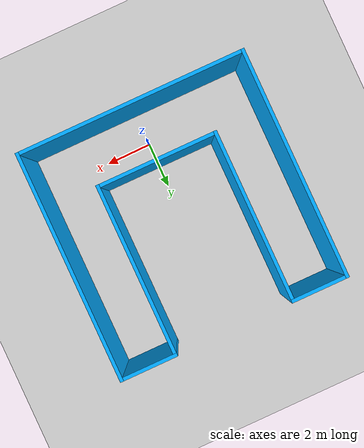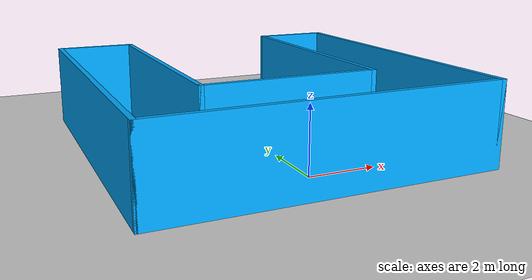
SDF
<sdf version="1.6">
 <world name="default">
  <light name="sun" type="directional">
   <pose>0 0 10 0 -0 0</pose>
   <diffuse>0.8 0.8 0.8 1</diffuse>
   <specular>0.2 0.2 0.2 1</specular>
   <attenuation>
    <range>1000</range>
    <constant>0.9</constant>
    <linear>0.01</linear>
    <quadratic>0.001</quadratic>
   </attenuation>
   <direction>-0.5 0.1 -0.9</direction>
  </light>
  <model name="ground_plane">
   <static>1</static>
   <link name="link">
    <collision name="collision">
     <geometry><plane><normal>0 0 1</normal><size>100 100</size></plane></geometry>
     <surface>
      <contact><collide_bitmask>65535</collide_bitmask></contact>
      <friction><ode><mu>100</mu><mu2>50</mu2></ode></friction>
     </surface>
    </collision>
    <visual name="visual">
     <cast_shadows>0</cast_shadows>
     <geometry><plane><normal>0 0 1</normal><size>100 100</size></plane></geometry>
     <material>
      <script><uri>file://media/materials/scripts/gazebo.material</uri><name>Gazebo/Grey</name></script>
     </material>
    </visual>
   </link>
  </model>
  <gravity>0 0 -9.8</gravity>
  <magnetic_field>6e-06 2.3e-05 -4.2e-05</magnetic_field>
  <atmosphere type="adiabatic"/>
  <physics name="default_physics" default="0" type="ode">
   <max_step_size>0.001</max_step_size>
   <real_time_factor>1</real_time_factor>
   <real_time_update_rate>1000</real_time_update_rate>
  </physics>
  <scene><ambient>0.4 0.4 0.4 1</ambient><background>0.7 0.7 0.7 1</background><shadows>1</shadows></scene>
  <spherical_coordinates>
   <surface_model>EARTH_WGS84</surface_model>
   <latitude_deg>0</latitude_deg>
   <longitude_deg>0</longitude_deg>
   <elevation>0</elevation>
   <heading_deg>0</heading_deg>
  </spherical_coordinates>
  <model name="MyWorld">
   <pose>-0.016089 3.44923 0 0 -0 0</pose>
   <link name="Wall_11">
    <collision name="Wall_11_Collision">
     <geometry><box><size>10 0.15 2.5</size></box></geometry>
     <pose>0 0 1.25 0 -0 0</pose>
    </collision>
    <visual name="Wall_11_Visual">
     <pose>0 0 1.25 0 -0 0</pose>
     <geometry><box><size>10 0.15 2.5</size></box></geometry>
     <material>
      <script><uri>file://media/materials/scripts/gazebo.material</uri><name>Gazebo/Grey</name></script>
      <ambient>0 0.666667 1 1</ambient>
     </material>
     <meta><layer>0</layer></meta>
    </visual>
    <pose>-4.925 0 0 0 -0 1.5708</pose>
   </link>
   <link name="Wall_24">
    <collision name="Wall_24_Collision">
     <geometry><box><size>10 0.15 2.5</size></box></geometry>
     <pose>0 0 1.25 0 -0 0</pose>
    </collision>
    <visual name="Wall_24_Visual">
     <pose>0 0 1.25 0 -0 0</pose>
     <geometry><box><size>10 0.15 2.5</size></box></geometry>
     <material>
      <script><uri>file://media/materials/scripts/gazebo.material</uri><name>Gazebo/Grey</name></script>
      <ambient>0 0.666667 1 1</ambient>
     </material>
     <meta><layer>0</layer></meta>
    </visual>
    <pose>4.925 0 0 0 -0 1.5708</pose>
   </link>
   <link name="Wall_26">
    <collision name="Wall_26_Collision">
     <geometry><box><size>2.5 0.15 2.5</size></box></geometry>
     <pose>0 0 1.25 0 -0 0</pose>
    </collision>
    <visual name="Wall_26_Visual">
     <pose>0 0 1.25 0 -0 0</pose>
     <geometry><box><size>2.5 0.15 2.5</size></box></geometry>
     <material>
      <script><uri>file://media/materials/scripts/gazebo.material</uri><name>Gazebo/Grey</name></script>
      <ambient>0 0.666667 1 1</ambient>
     </material>
     <meta><layer>0</layer></meta>
    </visual>
    <pose>-3.75 4.925 0 0 -0 0</pose>
   </link>
   <link name="Wall_28">
    <collision name="Wall_28_Collision">
     <geometry><box><size>2.5133 0.15 2.5</size></box></geometry>
     <pose>0 0 1.25 0 -0 0</pose>
    </collision>
    <visual name="Wall_28_Visual">
     <pose>0 0 1.25 0 -0 0</pose>
     <geometry><box><size>2.5133 0.15 2.5</size></box></geometry>
     <material>
      <script><uri>file://media/materials/scripts/gazebo.material</uri><name>Gazebo/Grey</name></script>
      <ambient>0 0.666667 1 1</ambient>
     </material>
     <meta><layer>0</layer></meta>
    </visual>
    <pose>3.74335 4.925 0 0 -0 3.14159</pose>
   </link>
   <link name="Wall_30">
    <collision name="Wall_30_Collision">
     <geometry><box><size>7.5 0.15 2.5</size></box></geometry>
     <pose>0 0 1.25 0 -0 0</pose>
    </collision>
    <visual name="Wall_30_Visual">
     <pose>0 0 1.25 0 -0 0</pose>
     <geometry><box><size>7.5 0.15 2.5</size></box></geometry>
     <material>
      <script><uri>file://media/materials/scripts/gazebo.material</uri><name>Gazebo/Grey</name></script>
      <ambient>0 0.666667 1 1</ambient>
     </material>
     <meta><layer>0</layer></meta>
    </visual>
    <pose>2.5617 1.25 0 0 0 -1.5708</pose>
   </link>
   <link name="Wall_32">
    <collision name="Wall_32_Collision">
     <geometry><box><size>7.5 0.15 2.5</size></box></geometry>
     <pose>0 0 1.25 0 -0 0</pose>
    </collision>
    <visual name="Wall_32_Visual">
     <pose>0 0 1.25 0 -0 0</pose>
     <geometry><box><size>7.5 0.15 2.5</size></box></geometry>
     <material>
      <script><uri>file://media/materials/scripts/gazebo.material</uri><name>Gazebo/Grey</name></script>
      <ambient>0 0.666667 1 1</ambient>
     </material>
     <meta><layer>0</layer></meta>
    </visual>
    <pose>-2.575 1.25 0 0 0 -1.5708</pose>
   </link>
   <link name="Wall_34">
    <collision name="Wall_34_Collision">
     <geometry><box><size>5.2867 0.15 2.5</size></box></geometry>
     <pose>0 0 1.25 0 -0 0</pose>
    </collision>
    <visual name="Wall_34_Visual">
     <pose>0 0 1.25 0 -0 0</pose>
     <geometry><box><size>5.2867 0.15 2.5</size></box></geometry>
     <material>
      <script><uri>file://media/materials/scripts/gazebo.material</uri><name>Gazebo/Grey</name></script>
      <ambient>0 0.666667 1 1</ambient>
     </material>
     <meta><layer>0</layer></meta>
    </visual>
    <pose>-0.00665 -2.425 0 0 -0 0</pose>
   </link>
   <link name="Wall_9">
    <collision name="Wall_9_Collision">
     <geometry><box><size>10 0.15 2.5</size></box></geometry>
     <pose>0 0 1.25 0 -0 0</pose>
    </collision>
    <visual name="Wall_9_Visual">
     <pose>0 0 1.25 0 -0 0</pose>
     <geometry><box><size>10 0.15 2.5</size></box></geometry>
     <material>
      <script><uri>file://media/materials/scripts/gazebo.material</uri><name>Gazebo/Grey</name></script>
      <ambient>0 0.666667 1 1</ambient>
     </material>
     <meta><layer>0</layer></meta>
    </visual>
    <pose>0 -4.925 0 0 -0 0</pose>
   </link>
   <static>1</static>
  </model>
 </world>
</sdf>
